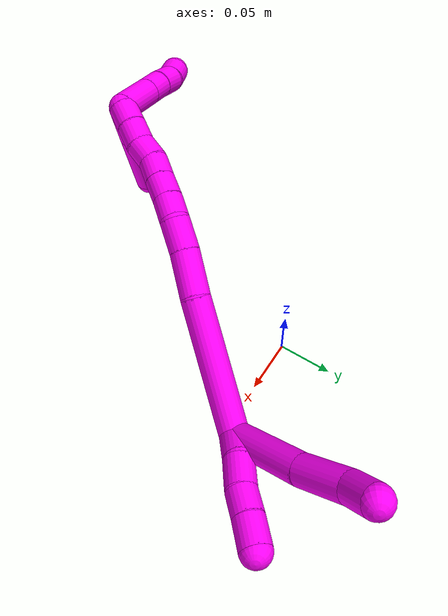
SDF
<sdf version="1.7">
 <world name="default">
  <model name="10">
   <static>0</static>
   <link name="10">
    <collision name="collision-cylinder-e_1_2_8">
     <pose>0.00527 -0.025738 -0.028567 2.40824 0.136202 0.351533</pose>
     <geometry><cylinder><radius>0.0125</radius><length>0.077622</length></cylinder></geometry>
     <surface>
      <friction><ode><mu>1.16</mu><mu2>1.16</mu2><slip1>0</slip1><slip2>0</slip2></ode></friction>
      <contact><ode><kp>1e+06</kp><kd>1</kd><max_vel>0</max_vel><min_depth>0.001</min_depth></ode></contact>
     </surface>
    </collision>
    <visual name="visual-cylinder-e_1_2_8">
     <pose>0.00527 -0.025738 -0.028567 2.40824 0.136202 0.351533</pose>
     <geometry><cylinder><radius>0.0125</radius><length>0.077622</length></cylinder></geometry>
     <material><ambient>1 0 0.964706 1</ambient></material>
    </visual>
    <collision name="collision-cylinder-e_2_8_9">
     <pose>0.012373 -0.067844 -0.07239 2.32107 0.081764 0.18754</pose>
     <geometry><cylinder><radius>0.0125</radius><length>0.0449</length></cylinder></geometry>
     <surface>
      <friction><ode><mu>1.16</mu><mu2>1.16</mu2><slip1>0</slip1><slip2>0</slip2></ode></friction>
      <contact><ode><kp>1e+06</kp><kd>1</kd><max_vel>0</max_vel><min_depth>0.001</min_depth></ode></contact>
     </surface>
    </collision>
    <visual name="visual-cylinder-e_2_8_9">
     <pose>0.012373 -0.067844 -0.07239 2.32107 0.081764 0.18754</pose>
     <geometry><cylinder><radius>0.0125</radius><length>0.0449</length></cylinder></geometry>
     <material><ambient>1 0 0.964706 1</ambient></material>
    </visual>
    <collision name="collision-cylinder-e_3_9_6">
     <pose>0.013117 -0.091954 -0.098943 2.54076 -0.07942 -0.255106</pose>
     <geometry><cylinder><radius>0.0125</radius><length>0.027478</length></cylinder></geometry>
     <surface>
      <friction><ode><mu>1.16</mu><mu2>1.16</mu2><slip1>0</slip1><slip2>0</slip2></ode></friction>
      <contact><ode><kp>1e+06</kp><kd>1</kd><max_vel>0</max_vel><min_depth>0.001</min_depth></ode></contact>
     </surface>
    </collision>
    <visual name="visual-cylinder-e_3_9_6">
     <pose>0.013117 -0.091954 -0.098943 2.54076 -0.07942 -0.255106</pose>
     <geometry><cylinder><radius>0.0125</radius><length>0.027478</length></cylinder></geometry>
     <material><ambient>1 0 0.964706 1</ambient></material>
    </visual>
    <collision name="collision-cylinder-e_1_2_10">
     <pose>0.00169 -0.001748 -0.014307 3.02005 0.116684 1.52993</pose>
     <geometry><cylinder><radius>0.0125</radius><length>0.029025</length></cylinder></geometry>
     <surface>
      <friction><ode><mu>1.16</mu><mu2>1.16</mu2><slip1>0</slip1><slip2>0</slip2></ode></friction>
      <contact><ode><kp>1e+06</kp><kd>1</kd><max_vel>0</max_vel><min_depth>0.001</min_depth></ode></contact>
     </surface>
    </collision>
    <visual name="visual-cylinder-e_1_2_10">
     <pose>0.00169 -0.001748 -0.014307 3.02005 0.116684 1.52993</pose>
     <geometry><cylinder><radius>0.0125</radius><length>0.029025</length></cylinder></geometry>
     <material><ambient>1 0 0.964706 1</ambient></material>
    </visual>
    <collision name="collision-cylinder-e_2_10_11">
     <pose>0.007696 -0.00302 -0.040784 -3.10259 0.340649 -2.91577</pose>
     <geometry><cylinder><radius>0.0125</radius><length>0.025842</length></cylinder></geometry>
     <surface>
      <friction><ode><mu>1.16</mu><mu2>1.16</mu2><slip1>0</slip1><slip2>0</slip2></ode></friction>
      <contact><ode><kp>1e+06</kp><kd>1</kd><max_vel>0</max_vel><min_depth>0.001</min_depth></ode></contact>
     </surface>
    </collision>
    <visual name="visual-cylinder-e_2_10_11">
     <pose>0.007696 -0.00302 -0.040784 -3.10259 0.340649 -2.91577</pose>
     <geometry><cylinder><radius>0.0125</radius><length>0.025842</length></cylinder></geometry>
     <material><ambient>1 0 0.964706 1</ambient></material>
    </visual>
    <collision name="collision-cylinder-e_3_11_12">
     <pose>0.016612 -0.003494 -0.062463 3.04219 0.448486 2.71211</pose>
     <geometry><cylinder><radius>0.0125</radius><length>0.021213</length></cylinder></geometry>
     <surface>
      <friction><ode><mu>1.16</mu><mu2>1.16</mu2><slip1>0</slip1><slip2>0</slip2></ode></friction>
      <contact><ode><kp>1e+06</kp><kd>1</kd><max_vel>0</max_vel><min_depth>0.001</min_depth></ode></contact>
     </surface>
    </collision>
    <visual name="visual-cylinder-e_3_11_12">
     <pose>0.016612 -0.003494 -0.062463 3.04219 0.448486 2.71211</pose>
     <geometry><cylinder><radius>0.0125</radius><length>0.021213</length></cylinder></geometry>
     <material><ambient>1 0 0.964706 1</ambient></material>
    </visual>
    <collision name="collision-cylinder-e_4_12_5">
     <pose>0.026868 -0.004815 -0.082505 3.10624 0.492695 3.00122</pose>
     <geometry><cylinder><radius>0.0125</radius><length>0.02392</length></cylinder></geometry>
     <surface>
      <friction><ode><mu>1.16</mu><mu2>1.16</mu2><slip1>0</slip1><slip2>0</slip2></ode></friction>
      <contact><ode><kp>1e+06</kp><kd>1</kd><max_vel>0</max_vel><min_depth>0.001</min_depth></ode></contact>
     </surface>
    </collision>
    <visual name="visual-cylinder-e_4_12_5">
     <pose>0.026868 -0.004815 -0.082505 3.10624 0.492695 3.00122</pose>
     <geometry><cylinder><radius>0.0125</radius><length>0.02392</length></cylinder></geometry>
     <material><ambient>1 0 0.964706 1</ambient></material>
    </visual>
    <collision name="collision-cylinder-e_1_2_13">
     <pose>-0.051412 -0.007843 0.021719 0.346552 -1.14864 -0.225557</pose>
     <geometry><cylinder><radius>0.0125</radius><length>0.11272</length></cylinder></geometry>
     <surface>
      <friction><ode><mu>1.16</mu><mu2>1.16</mu2><slip1>0</slip1><slip2>0</slip2></ode></friction>
      <contact><ode><kp>1e+06</kp><kd>1</kd><max_vel>0</max_vel><min_depth>0.001</min_depth></ode></contact>
     </surface>
    </collision>
    <visual name="visual-cylinder-e_1_2_13">
     <pose>-0.051412 -0.007843 0.021719 0.346552 -1.14864 -0.225557</pose>
     <geometry><cylinder><radius>0.0125</radius><length>0.11272</length></cylinder></geometry>
     <material><ambient>1 0 0.964706 1</ambient></material>
    </visual>
    <collision name="collision-cylinder-e_2_13_14">
     <pose>-0.119057 -0.018326 0.053671 0.25245 -0.993751 -0.137407</pose>
     <geometry><cylinder><radius>0.0125</radius><length>0.038739</length></cylinder></geometry>
     <surface>
      <friction><ode><mu>1.16</mu><mu2>1.16</mu2><slip1>0</slip1><slip2>0</slip2></ode></friction>
      <contact><ode><kp>1e+06</kp><kd>1</kd><max_vel>0</max_vel><min_depth>0.001</min_depth></ode></contact>
     </surface>
    </collision>
    <visual name="visual-cylinder-e_2_13_14">
     <pose>-0.119057 -0.018326 0.053671 0.25245 -0.993751 -0.137407</pose>
     <geometry><cylinder><radius>0.0125</radius><length>0.038739</length></cylinder></geometry>
     <material><ambient>1 0 0.964706 1</ambient></material>
    </visual>
    <collision name="collision-cylinder-e_3_14_15">
     <pose>-0.147464 -0.022071 0.070329 0.170289 -1.07908 -0.102129</pose>
     <geometry><cylinder><radius>0.0125</radius><length>0.02762</length></cylinder></geometry>
     <surface>
      <friction><ode><mu>1.16</mu><mu2>1.16</mu2><slip1>0</slip1><slip2>0</slip2></ode></friction>
      <contact><ode><kp>1e+06</kp><kd>1</kd><max_vel>0</max_vel><min_depth>0.001</min_depth></ode></contact>
     </surface>
    </collision>
    <visual name="visual-cylinder-e_3_14_15">
     <pose>-0.147464 -0.022071 0.070329 0.170289 -1.07908 -0.102129</pose>
     <geometry><cylinder><radius>0.0125</radius><length>0.02762</length></cylinder></geometry>
     <material><ambient>1 0 0.964706 1</ambient></material>
    </visual>
    <collision name="collision-cylinder-e_4_15_16">
     <pose>-0.167163 -0.023057 0.083759 -0.016921 -0.821168 0.007366</pose>
     <geometry><cylinder><radius>0.0125</radius><length>0.020564</length></cylinder></geometry>
     <surface>
      <friction><ode><mu>1.16</mu><mu2>1.16</mu2><slip1>0</slip1><slip2>0</slip2></ode></friction>
      <contact><ode><kp>1e+06</kp><kd>1</kd><max_vel>0</max_vel><min_depth>0.001</min_depth></ode></contact>
     </surface>
    </collision>
    <visual name="visual-cylinder-e_4_15_16">
     <pose>-0.167163 -0.023057 0.083759 -0.016921 -0.821168 0.007366</pose>
     <geometry><cylinder><radius>0.0125</radius><length>0.020564</length></cylinder></geometry>
     <material><ambient>1 0 0.964706 1</ambient></material>
    </visual>
    <collision name="collision-cylinder-e_5_16_17">
     <pose>-0.182147 -0.022302 0.097557 -0.093367 -0.829887 0.041154</pose>
     <geometry><cylinder><radius>0.0125</radius><length>0.020215</length></cylinder></geometry>
     <surface>
      <friction><ode><mu>1.16</mu><mu2>1.16</mu2><slip1>0</slip1><slip2>0</slip2></ode></friction>
      <contact><ode><kp>1e+06</kp><kd>1</kd><max_vel>0</max_vel><min_depth>0.001</min_depth></ode></contact>
     </surface>
    </collision>
    <visual name="visual-cylinder-e_5_16_17">
     <pose>-0.182147 -0.022302 0.097557 -0.093367 -0.829887 0.041154</pose>
     <geometry><cylinder><radius>0.0125</radius><length>0.020215</length></cylinder></geometry>
     <material><ambient>1 0 0.964706 1</ambient></material>
    </visual>
    <collision name="collision-cylinder-e_6_17_18">
     <pose>-0.196893 -0.02123 0.111264 -0.062991 -0.810703 0.027038</pose>
     <geometry><cylinder><radius>0.0125</radius><length>0.020114</length></cylinder></geometry>
     <surface>
      <friction><ode><mu>1.16</mu><mu2>1.16</mu2><slip1>0</slip1><slip2>0</slip2></ode></friction>
      <contact><ode><kp>1e+06</kp><kd>1</kd><max_vel>0</max_vel><min_depth>0.001</min_depth></ode></contact>
     </surface>
    </collision>
    <visual name="visual-cylinder-e_6_17_18">
     <pose>-0.196893 -0.02123 0.111264 -0.062991 -0.810703 0.027038</pose>
     <geometry><cylinder><radius>0.0125</radius><length>0.020114</length></cylinder></geometry>
     <material><ambient>1 0 0.964706 1</ambient></material>
    </visual>
    <collision name="collision-cylinder-e_7_18_19">
     <pose>-0.212042 -0.017918 0.123667 -0.482714 -0.903267 0.237681</pose>
     <geometry><cylinder><radius>0.0125</radius><length>0.020016</length></cylinder></geometry>
     <surface>
      <friction><ode><mu>1.16</mu><mu2>1.16</mu2><slip1>0</slip1><slip2>0</slip2></ode></friction>
      <contact><ode><kp>1e+06</kp><kd>1</kd><max_vel>0</max_vel><min_depth>0.001</min_depth></ode></contact>
     </surface>
    </collision>
    <visual name="visual-cylinder-e_7_18_19">
     <pose>-0.212042 -0.017918 0.123667 -0.482714 -0.903267 0.237681</pose>
     <geometry><cylinder><radius>0.0125</radius><length>0.020016</length></cylinder></geometry>
     <material><ambient>1 0 0.964706 1</ambient></material>
    </visual>
    <collision name="collision-cylinder-e_8_19_20">
     <pose>-0.228174 -0.014348 0.134742 -0.123602 -0.973173 0.065447</pose>
     <geometry><cylinder><radius>0.0125</radius><length>0.020011</length></cylinder></geometry>
     <surface>
      <friction><ode><mu>1.16</mu><mu2>1.16</mu2><slip1>0</slip1><slip2>0</slip2></ode></friction>
      <contact><ode><kp>1e+06</kp><kd>1</kd><max_vel>0</max_vel><min_depth>0.001</min_depth></ode></contact>
     </surface>
    </collision>
    <visual name="visual-cylinder-e_8_19_20">
     <pose>-0.228174 -0.014348 0.134742 -0.123602 -0.973173 0.065447</pose>
     <geometry><cylinder><radius>0.0125</radius><length>0.020011</length></cylinder></geometry>
     <material><ambient>1 0 0.964706 1</ambient></material>
    </visual>
    <collision name="collision-cylinder-e_9_20_1">
     <pose>-0.244416 -0.012693 0.146292 -0.159725 -0.922347 0.079497</pose>
     <geometry><cylinder><radius>0.0125</radius><length>0.020002</length></cylinder></geometry>
     <surface>
      <friction><ode><mu>1.16</mu><mu2>1.16</mu2><slip1>0</slip1><slip2>0</slip2></ode></friction>
      <contact><ode><kp>1e+06</kp><kd>1</kd><max_vel>0</max_vel><min_depth>0.001</min_depth></ode></contact>
     </surface>
    </collision>
    <visual name="visual-cylinder-e_9_20_1">
     <pose>-0.244416 -0.012693 0.146292 -0.159725 -0.922347 0.079497</pose>
     <geometry><cylinder><radius>0.0125</radius><length>0.020002</length></cylinder></geometry>
     <material><ambient>1 0 0.964706 1</ambient></material>
    </visual>
    <collision name="collision-cylinder-e_1_1_21">
     <pose>-0.238015 -0.005196 0.166765 -0.423278 0.734515 -0.164941</pose>
     <geometry><cylinder><radius>0.0125</radius><length>0.042887</length></cylinder></geometry>
     <surface>
      <friction><ode><mu>1.16</mu><mu2>1.16</mu2><slip1>0</slip1><slip2>0</slip2></ode></friction>
      <contact><ode><kp>1e+06</kp><kd>1</kd><max_vel>0</max_vel><min_depth>0.001</min_depth></ode></contact>
     </surface>
    </collision>
    <visual name="visual-cylinder-e_1_1_21">
     <pose>-0.238015 -0.005196 0.166765 -0.423278 0.734515 -0.164941</pose>
     <geometry><cylinder><radius>0.0125</radius><length>0.042887</length></cylinder></geometry>
     <material><ambient>1 0 0.964706 1</ambient></material>
    </visual>
    <collision name="collision-cylinder-e_2_21_4">
     <pose>-0.199795 0.009096 0.194935 -0.516338 0.988363 -0.282641</pose>
     <geometry><cylinder><radius>0.0125</radius><length>0.057113</length></cylinder></geometry>
     <surface>
      <friction><ode><mu>1.16</mu><mu2>1.16</mu2><slip1>0</slip1><slip2>0</slip2></ode></friction>
      <contact><ode><kp>1e+06</kp><kd>1</kd><max_vel>0</max_vel><min_depth>0.001</min_depth></ode></contact>
     </surface>
    </collision>
    <visual name="visual-cylinder-e_2_21_4">
     <pose>-0.199795 0.009096 0.194935 -0.516338 0.988363 -0.282641</pose>
     <geometry><cylinder><radius>0.0125</radius><length>0.057113</length></cylinder></geometry>
     <material><ambient>1 0 0.964706 1</ambient></material>
    </visual>
    <collision name="collision-cylinder-e_1_1_22">
     <pose>-0.252459 -0.020529 0.169384 0.474411 -0.003745 -0.000905</pose>
     <geometry><cylinder><radius>0.0125</radius><length>0.038511</length></cylinder></geometry>
     <surface>
      <friction><ode><mu>1.16</mu><mu2>1.16</mu2><slip1>0</slip1><slip2>0</slip2></ode></friction>
      <contact><ode><kp>1e+06</kp><kd>1</kd><max_vel>0</max_vel><min_depth>0.001</min_depth></ode></contact>
     </surface>
    </collision>
    <visual name="visual-cylinder-e_1_1_22">
     <pose>-0.252459 -0.020529 0.169384 0.474411 -0.003745 -0.000905</pose>
     <geometry><cylinder><radius>0.0125</radius><length>0.038511</length></cylinder></geometry>
     <material><ambient>1 0 0.964706 1</ambient></material>
    </visual>
    <collision name="collision-cylinder-e_2_22_23">
     <pose>-0.252646 -0.033961 0.195478 0.477285 -0.011343 -0.002759</pose>
     <geometry><cylinder><radius>0.0125</radius><length>0.020187</length></cylinder></geometry>
     <surface>
      <friction><ode><mu>1.16</mu><mu2>1.16</mu2><slip1>0</slip1><slip2>0</slip2></ode></friction>
      <contact><ode><kp>1e+06</kp><kd>1</kd><max_vel>0</max_vel><min_depth>0.001</min_depth></ode></contact>
     </surface>
    </collision>
    <visual name="visual-cylinder-e_2_22_23">
     <pose>-0.252646 -0.033961 0.195478 0.477285 -0.011343 -0.002759</pose>
     <geometry><cylinder><radius>0.0125</radius><length>0.020187</length></cylinder></geometry>
     <material><ambient>1 0 0.964706 1</ambient></material>
    </visual>
    <collision name="collision-cylinder-e_3_23_24">
     <pose>-0.252006 -0.04274 0.214092 0.405497 0.071739 0.014754</pose>
     <geometry><cylinder><radius>0.0125</radius><length>0.021056</length></cylinder></geometry>
     <surface>
      <friction><ode><mu>1.16</mu><mu2>1.16</mu2><slip1>0</slip1><slip2>0</slip2></ode></friction>
      <contact><ode><kp>1e+06</kp><kd>1</kd><max_vel>0</max_vel><min_depth>0.001</min_depth></ode></contact>
     </surface>
    </collision>
    <visual name="visual-cylinder-e_3_23_24">
     <pose>-0.252006 -0.04274 0.214092 0.405497 0.071739 0.014754</pose>
     <geometry><cylinder><radius>0.0125</radius><length>0.021056</length></cylinder></geometry>
     <material><ambient>1 0 0.964706 1</ambient></material>
    </visual>
    <collision name="collision-cylinder-e_4_24_3">
     <pose>-0.253077 -0.049165 0.233433 0.231261 -0.181385 -0.021125</pose>
     <geometry><cylinder><radius>0.0125</radius><length>0.020246</length></cylinder></geometry>
     <surface>
      <friction><ode><mu>1.16</mu><mu2>1.16</mu2><slip1>0</slip1><slip2>0</slip2></ode></friction>
      <contact><ode><kp>1e+06</kp><kd>1</kd><max_vel>0</max_vel><min_depth>0.001</min_depth></ode></contact>
     </surface>
    </collision>
    <visual name="visual-cylinder-e_4_24_3">
     <pose>-0.253077 -0.049165 0.233433 0.231261 -0.181385 -0.021125</pose>
     <geometry><cylinder><radius>0.0125</radius><length>0.020246</length></cylinder></geometry>
     <material><ambient>1 0 0.964706 1</ambient></material>
    </visual>
    <collision name="collision-sphere-3">
     <pose>-0.254903 -0.051447 0.243125 0 -0 0</pose>
     <geometry><sphere><radius>0.0125</radius></sphere></geometry>
     <surface>
      <friction><ode><mu>1.16</mu><mu2>1.16</mu2><slip1>0</slip1><slip2>0</slip2></ode></friction>
      <contact><ode><kp>1e+06</kp><kd>1</kd><max_vel>0</max_vel><min_depth>0.001</min_depth></ode></contact>
     </surface>
    </collision>
    <visual name="visual-sphere-3">
     <pose>-0.254903 -0.051447 0.243125 0 -0 0</pose>
     <geometry><sphere><radius>0.0125</radius></sphere></geometry>
     <material><ambient>1 0 0.964706 1</ambient></material>
    </visual>
    <collision name="collision-sphere-24">
     <pose>-0.251251 -0.046882 0.223741 0 -0 0</pose>
     <geometry><sphere><radius>0.0125</radius></sphere></geometry>
     <surface>
      <friction><ode><mu>1.16</mu><mu2>1.16</mu2><slip1>0</slip1><slip2>0</slip2></ode></friction>
      <contact><ode><kp>1e+06</kp><kd>1</kd><max_vel>0</max_vel><min_depth>0.001</min_depth></ode></contact>
     </surface>
    </collision>
    <visual name="visual-sphere-24">
     <pose>-0.251251 -0.046882 0.223741 0 -0 0</pose>
     <geometry><sphere><radius>0.0125</radius></sphere></geometry>
     <material><ambient>1 0 0.964706 1</ambient></material>
    </visual>
    <collision name="collision-sphere-23">
     <pose>-0.25276 -0.038598 0.204443 0 -0 0</pose>
     <geometry><sphere><radius>0.0125</radius></sphere></geometry>
     <surface>
      <friction><ode><mu>1.16</mu><mu2>1.16</mu2><slip1>0</slip1><slip2>0</slip2></ode></friction>
      <contact><ode><kp>1e+06</kp><kd>1</kd><max_vel>0</max_vel><min_depth>0.001</min_depth></ode></contact>
     </surface>
    </collision>
    <visual name="visual-sphere-23">
     <pose>-0.25276 -0.038598 0.204443 0 -0 0</pose>
     <geometry><sphere><radius>0.0125</radius></sphere></geometry>
     <material><ambient>1 0 0.964706 1</ambient></material>
    </visual>
    <collision name="collision-sphere-22">
     <pose>-0.252531 -0.029325 0.186513 0 -0 0</pose>
     <geometry><sphere><radius>0.0125</radius></sphere></geometry>
     <surface>
      <friction><ode><mu>1.16</mu><mu2>1.16</mu2><slip1>0</slip1><slip2>0</slip2></ode></friction>
      <contact><ode><kp>1e+06</kp><kd>1</kd><max_vel>0</max_vel><min_depth>0.001</min_depth></ode></contact>
     </surface>
    </collision>
    <visual name="visual-sphere-22">
     <pose>-0.252531 -0.029325 0.186513 0 -0 0</pose>
     <geometry><sphere><radius>0.0125</radius></sphere></geometry>
     <material><ambient>1 0 0.964706 1</ambient></material>
    </visual>
    <collision name="collision-sphere-4">
     <pose>-0.175946 0.016851 0.208595 0 -0 0</pose>
     <geometry><sphere><radius>0.0125</radius></sphere></geometry>
     <surface>
      <friction><ode><mu>1.16</mu><mu2>1.16</mu2><slip1>0</slip1><slip2>0</slip2></ode></friction>
      <contact><ode><kp>1e+06</kp><kd>1</kd><max_vel>0</max_vel><min_depth>0.001</min_depth></ode></contact>
     </surface>
    </collision>
    <visual name="visual-sphere-4">
     <pose>-0.175946 0.016851 0.208595 0 -0 0</pose>
     <geometry><sphere><radius>0.0125</radius></sphere></geometry>
     <material><ambient>1 0 0.964706 1</ambient></material>
    </visual>
    <collision name="collision-sphere-21">
     <pose>-0.223643 0.001341 0.181275 0 -0 0</pose>
     <geometry><sphere><radius>0.0125</radius></sphere></geometry>
     <surface>
      <friction><ode><mu>1.16</mu><mu2>1.16</mu2><slip1>0</slip1><slip2>0</slip2></ode></friction>
      <contact><ode><kp>1e+06</kp><kd>1</kd><max_vel>0</max_vel><min_depth>0.001</min_depth></ode></contact>
     </surface>
    </collision>
    <visual name="visual-sphere-21">
     <pose>-0.223643 0.001341 0.181275 0 -0 0</pose>
     <geometry><sphere><radius>0.0125</radius></sphere></geometry>
     <material><ambient>1 0 0.964706 1</ambient></material>
    </visual>
    <collision name="collision-sphere-1">
     <pose>-0.252387 -0.011733 0.152255 0 -0 0</pose>
     <geometry><sphere><radius>0.0125</radius></sphere></geometry>
     <surface>
      <friction><ode><mu>1.16</mu><mu2>1.16</mu2><slip1>0</slip1><slip2>0</slip2></ode></friction>
      <contact><ode><kp>1e+06</kp><kd>1</kd><max_vel>0</max_vel><min_depth>0.001</min_depth></ode></contact>
     </surface>
    </collision>
    <visual name="visual-sphere-1">
     <pose>-0.252387 -0.011733 0.152255 0 -0 0</pose>
     <geometry><sphere><radius>0.0125</radius></sphere></geometry>
     <material><ambient>1 0 0.964706 1</ambient></material>
    </visual>
    <collision name="collision-sphere-11">
     <pose>0.012013 -0.002545 -0.052953 0 -0 0</pose>
     <geometry><sphere><radius>0.0125</radius></sphere></geometry>
     <surface>
      <friction><ode><mu>1.16</mu><mu2>1.16</mu2><slip1>0</slip1><slip2>0</slip2></ode></friction>
      <contact><ode><kp>1e+06</kp><kd>1</kd><max_vel>0</max_vel><min_depth>0.001</min_depth></ode></contact>
     </surface>
    </collision>
    <visual name="visual-sphere-11">
     <pose>0.012013 -0.002545 -0.052953 0 -0 0</pose>
     <geometry><sphere><radius>0.0125</radius></sphere></geometry>
     <material><ambient>1 0 0.964706 1</ambient></material>
    </visual>
    <collision name="collision-sphere-10">
     <pose>0.003379 -0.003495 -0.028615 0 -0 0</pose>
     <geometry><sphere><radius>0.0125</radius></sphere></geometry>
     <surface>
      <friction><ode><mu>1.16</mu><mu2>1.16</mu2><slip1>0</slip1><slip2>0</slip2></ode></friction>
      <contact><ode><kp>1e+06</kp><kd>1</kd><max_vel>0</max_vel><min_depth>0.001</min_depth></ode></contact>
     </surface>
    </collision>
    <visual name="visual-sphere-10">
     <pose>0.003379 -0.003495 -0.028615 0 -0 0</pose>
     <geometry><sphere><radius>0.0125</radius></sphere></geometry>
     <material><ambient>1 0 0.964706 1</ambient></material>
    </visual>
    <collision name="collision-sphere-6">
     <pose>0.012027 -0.099696 -0.11024 0 -0 0</pose>
     <geometry><sphere><radius>0.0125</radius></sphere></geometry>
     <surface>
      <friction><ode><mu>1.16</mu><mu2>1.16</mu2><slip1>0</slip1><slip2>0</slip2></ode></friction>
      <contact><ode><kp>1e+06</kp><kd>1</kd><max_vel>0</max_vel><min_depth>0.001</min_depth></ode></contact>
     </surface>
    </collision>
    <visual name="visual-sphere-6">
     <pose>0.012027 -0.099696 -0.11024 0 -0 0</pose>
     <geometry><sphere><radius>0.0125</radius></sphere></geometry>
     <material><ambient>1 0 0.964706 1</ambient></material>
    </visual>
    <collision name="collision-sphere-9">
     <pose>0.014207 -0.084211 -0.087646 0 -0 0</pose>
     <geometry><sphere><radius>0.0125</radius></sphere></geometry>
     <surface>
      <friction><ode><mu>1.16</mu><mu2>1.16</mu2><slip1>0</slip1><slip2>0</slip2></ode></friction>
      <contact><ode><kp>1e+06</kp><kd>1</kd><max_vel>0</max_vel><min_depth>0.001</min_depth></ode></contact>
     </surface>
    </collision>
    <visual name="visual-sphere-9">
     <pose>0.014207 -0.084211 -0.087646 0 -0 0</pose>
     <geometry><sphere><radius>0.0125</radius></sphere></geometry>
     <material><ambient>1 0 0.964706 1</ambient></material>
    </visual>
    <collision name="collision-sphere-2">
     <geometry><sphere><radius>0.0125</radius></sphere></geometry>
     <surface>
      <friction><ode><mu>1.16</mu><mu2>1.16</mu2><slip1>0</slip1><slip2>0</slip2></ode></friction>
      <contact><ode><kp>1e+06</kp><kd>1</kd><max_vel>0</max_vel><min_depth>0.001</min_depth></ode></contact>
     </surface>
    </collision>
    <visual name="visual-sphere-2">
     <geometry><sphere><radius>0.0125</radius></sphere></geometry>
     <material><ambient>1 0 0.964706 1</ambient></material>
    </visual>
    <collision name="collision-sphere-19">
     <pose>-0.219902 -0.015042 0.129155 0 -0 0</pose>
     <geometry><sphere><radius>0.0125</radius></sphere></geometry>
     <surface>
      <friction><ode><mu>1.16</mu><mu2>1.16</mu2><slip1>0</slip1><slip2>0</slip2></ode></friction>
      <contact><ode><kp>1e+06</kp><kd>1</kd><max_vel>0</max_vel><min_depth>0.001</min_depth></ode></contact>
     </surface>
    </collision>
    <visual name="visual-sphere-19">
     <pose>-0.219902 -0.015042 0.129155 0 -0 0</pose>
     <geometry><sphere><radius>0.0125</radius></sphere></geometry>
     <material><ambient>1 0 0.964706 1</ambient></material>
    </visual>
    <collision name="collision-sphere-8">
     <pose>0.01054 -0.051476 -0.057134 0 -0 0</pose>
     <geometry><sphere><radius>0.0125</radius></sphere></geometry>
     <surface>
      <friction><ode><mu>1.16</mu><mu2>1.16</mu2><slip1>0</slip1><slip2>0</slip2></ode></friction>
      <contact><ode><kp>1e+06</kp><kd>1</kd><max_vel>0</max_vel><min_depth>0.001</min_depth></ode></contact>
     </surface>
    </collision>
    <visual name="visual-sphere-8">
     <pose>0.01054 -0.051476 -0.057134 0 -0 0</pose>
     <geometry><sphere><radius>0.0125</radius></sphere></geometry>
     <material><ambient>1 0 0.964706 1</ambient></material>
    </visual>
    <collision name="collision-sphere-12">
     <pose>0.021211 -0.004442 -0.071974 0 -0 0</pose>
     <geometry><sphere><radius>0.0125</radius></sphere></geometry>
     <surface>
      <friction><ode><mu>1.16</mu><mu2>1.16</mu2><slip1>0</slip1><slip2>0</slip2></ode></friction>
      <contact><ode><kp>1e+06</kp><kd>1</kd><max_vel>0</max_vel><min_depth>0.001</min_depth></ode></contact>
     </surface>
    </collision>
    <visual name="visual-sphere-12">
     <pose>0.021211 -0.004442 -0.071974 0 -0 0</pose>
     <geometry><sphere><radius>0.0125</radius></sphere></geometry>
     <material><ambient>1 0 0.964706 1</ambient></material>
    </visual>
    <collision name="collision-sphere-5">
     <pose>0.032525 -0.005187 -0.093036 0 -0 0</pose>
     <geometry><sphere><radius>0.0125</radius></sphere></geometry>
     <surface>
      <friction><ode><mu>1.16</mu><mu2>1.16</mu2><slip1>0</slip1><slip2>0</slip2></ode></friction>
      <contact><ode><kp>1e+06</kp><kd>1</kd><max_vel>0</max_vel><min_depth>0.001</min_depth></ode></contact>
     </surface>
    </collision>
    <visual name="visual-sphere-5">
     <pose>0.032525 -0.005187 -0.093036 0 -0 0</pose>
     <geometry><sphere><radius>0.0125</radius></sphere></geometry>
     <material><ambient>1 0 0.964706 1</ambient></material>
    </visual>
    <collision name="collision-sphere-13">
     <pose>-0.102824 -0.015687 0.043439 0 -0 0</pose>
     <geometry><sphere><radius>0.0125</radius></sphere></geometry>
     <surface>
      <friction><ode><mu>1.16</mu><mu2>1.16</mu2><slip1>0</slip1><slip2>0</slip2></ode></friction>
      <contact><ode><kp>1e+06</kp><kd>1</kd><max_vel>0</max_vel><min_depth>0.001</min_depth></ode></contact>
     </surface>
    </collision>
    <visual name="visual-sphere-13">
     <pose>-0.102824 -0.015687 0.043439 0 -0 0</pose>
     <geometry><sphere><radius>0.0125</radius></sphere></geometry>
     <material><ambient>1 0 0.964706 1</ambient></material>
    </visual>
    <collision name="collision-sphere-14">
     <pose>-0.13529 -0.020966 0.063903 0 -0 0</pose>
     <geometry><sphere><radius>0.0125</radius></sphere></geometry>
     <surface>
      <friction><ode><mu>1.16</mu><mu2>1.16</mu2><slip1>0</slip1><slip2>0</slip2></ode></friction>
      <contact><ode><kp>1e+06</kp><kd>1</kd><max_vel>0</max_vel><min_depth>0.001</min_depth></ode></contact>
     </surface>
    </collision>
    <visual name="visual-sphere-14">
     <pose>-0.13529 -0.020966 0.063903 0 -0 0</pose>
     <geometry><sphere><radius>0.0125</radius></sphere></geometry>
     <material><ambient>1 0 0.964706 1</ambient></material>
    </visual>
    <collision name="collision-sphere-15">
     <pose>-0.159637 -0.023176 0.076755 0 -0 0</pose>
     <geometry><sphere><radius>0.0125</radius></sphere></geometry>
     <surface>
      <friction><ode><mu>1.16</mu><mu2>1.16</mu2><slip1>0</slip1><slip2>0</slip2></ode></friction>
      <contact><ode><kp>1e+06</kp><kd>1</kd><max_vel>0</max_vel><min_depth>0.001</min_depth></ode></contact>
     </surface>
    </collision>
    <visual name="visual-sphere-15">
     <pose>-0.159637 -0.023176 0.076755 0 -0 0</pose>
     <geometry><sphere><radius>0.0125</radius></sphere></geometry>
     <material><ambient>1 0 0.964706 1</ambient></material>
    </visual>
    <collision name="collision-sphere-16">
     <pose>-0.174689 -0.022938 0.090764 0 -0 0</pose>
     <geometry><sphere><radius>0.0125</radius></sphere></geometry>
     <surface>
      <friction><ode><mu>1.16</mu><mu2>1.16</mu2><slip1>0</slip1><slip2>0</slip2></ode></friction>
      <contact><ode><kp>1e+06</kp><kd>1</kd><max_vel>0</max_vel><min_depth>0.001</min_depth></ode></contact>
     </surface>
    </collision>
    <visual name="visual-sphere-16">
     <pose>-0.174689 -0.022938 0.090764 0 -0 0</pose>
     <geometry><sphere><radius>0.0125</radius></sphere></geometry>
     <material><ambient>1 0 0.964706 1</ambient></material>
    </visual>
    <collision name="collision-sphere-17">
     <pose>-0.189604 -0.021666 0.104349 0 -0 0</pose>
     <geometry><sphere><radius>0.0125</radius></sphere></geometry>
     <surface>
      <friction><ode><mu>1.16</mu><mu2>1.16</mu2><slip1>0</slip1><slip2>0</slip2></ode></friction>
      <contact><ode><kp>1e+06</kp><kd>1</kd><max_vel>0</max_vel><min_depth>0.001</min_depth></ode></contact>
     </surface>
    </collision>
    <visual name="visual-sphere-17">
     <pose>-0.189604 -0.021666 0.104349 0 -0 0</pose>
     <geometry><sphere><radius>0.0125</radius></sphere></geometry>
     <material><ambient>1 0 0.964706 1</ambient></material>
    </visual>
    <collision name="collision-sphere-18">
     <pose>-0.204182 -0.020794 0.11818 0 -0 0</pose>
     <geometry><sphere><radius>0.0125</radius></sphere></geometry>
     <surface>
      <friction><ode><mu>1.16</mu><mu2>1.16</mu2><slip1>0</slip1><slip2>0</slip2></ode></friction>
      <contact><ode><kp>1e+06</kp><kd>1</kd><max_vel>0</max_vel><min_depth>0.001</min_depth></ode></contact>
     </surface>
    </collision>
    <visual name="visual-sphere-18">
     <pose>-0.204182 -0.020794 0.11818 0 -0 0</pose>
     <geometry><sphere><radius>0.0125</radius></sphere></geometry>
     <material><ambient>1 0 0.964706 1</ambient></material>
    </visual>
    <collision name="collision-sphere-20">
     <pose>-0.236445 -0.013654 0.140329 0 -0 0</pose>
     <geometry><sphere><radius>0.0125</radius></sphere></geometry>
     <surface>
      <friction><ode><mu>1.16</mu><mu2>1.16</mu2><slip1>0</slip1><slip2>0</slip2></ode></friction>
      <contact><ode><kp>1e+06</kp><kd>1</kd><max_vel>0</max_vel><min_depth>0.001</min_depth></ode></contact>
     </surface>
    </collision>
    <visual name="visual-sphere-20">
     <pose>-0.236445 -0.013654 0.140329 0 -0 0</pose>
     <geometry><sphere><radius>0.0125</radius></sphere></geometry>
     <material><ambient>1 0 0.964706 1</ambient></material>
    </visual>
    <inertial>
     <pose>-0.111416 -0.020559 0.060713 0 -0 0</pose>
     <mass>0.75</mass>
     <inertia>
      <ixx>0.000125</ixx>
      <ixy>0</ixy>
      <ixz>0</ixz>
      <iyy>0.000137</iyy>
      <iyz>0</iyz>
      <izz>0.000157</izz>
     </inertia>
    </inertial>
   </link>
   <pose>0.11892 0.020972 0.059536 -2.47387 0.823386 1.31357</pose>
  </model>
 </world>
</sdf>
